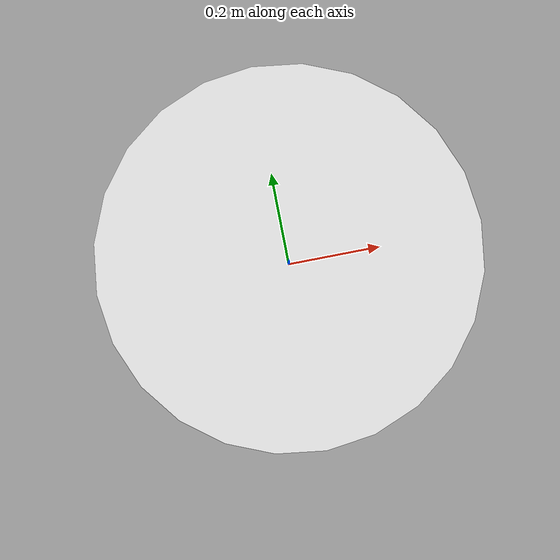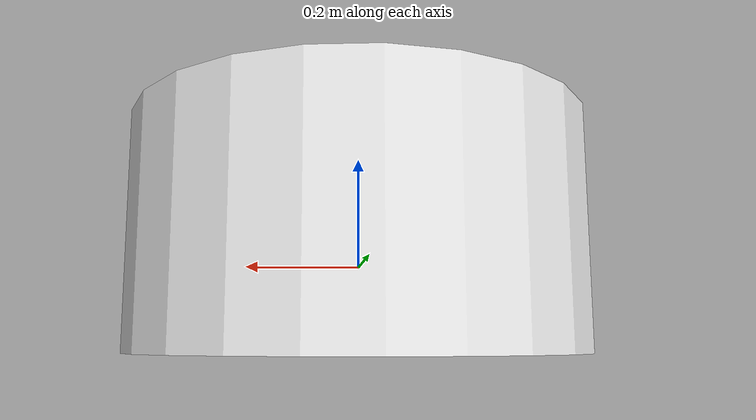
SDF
<?xml version="1.0" ?>
<sdf version="1.6">
  <model name="sample_cache">
    <static>false</static>
    <link name="body">
      <pose>0 0 0.05 0 0 0</pose>
      <collision name="collision">
      <inertial>
        <mass>1.0</mass>
        <inertia>
          <ixx>0.01</ixx>
          <iyy>0.01</iyy>
          <izz>0.01</izz>
          <ixy>0.0</ixy>
          <ixz>0.0</ixz>
          <iyz>0.0</iyz>
        </inertia>
      </inertial>
        <geometry>
          <cylinder>
            <radius>0.4</radius>
            <length>0.4</length>
          </cylinder>
        </geometry>
      </collision>
      <visual name="visual">
        <geometry>
          <cylinder>
            <radius>0.4</radius>
            <length>0.4</length>
          </cylinder>
        </geometry>
        <material>
          <ambient>0.7 0.7 0.7 1</ambient>
          <diffuse>0.9 0.9 0.9 1</diffuse>
          <specular>0.3 0.3 0.3 1</specular>
        </material>
        <surface>
          <bounce>
            <restitution_coefficient>0.7</restitution_coefficient>
            <threshold>1.0</threshold>
          </bounce>
        </surface>
      </visual>
    </link>
  </model>
</sdf>
